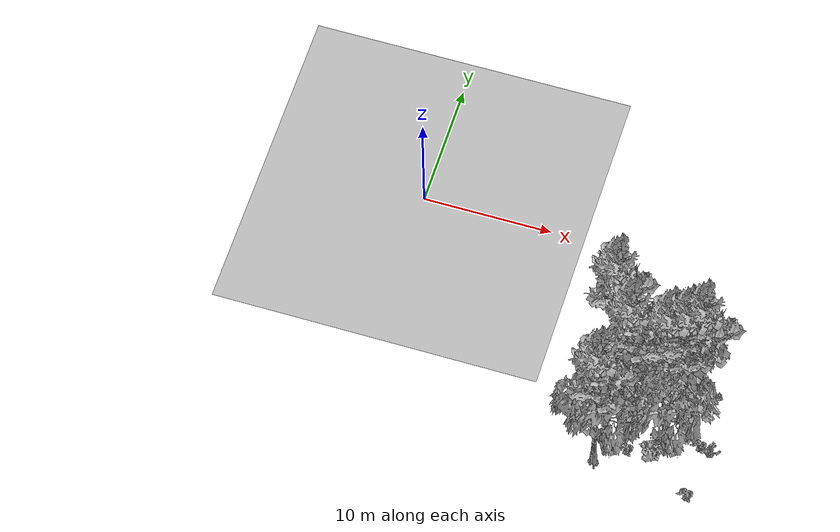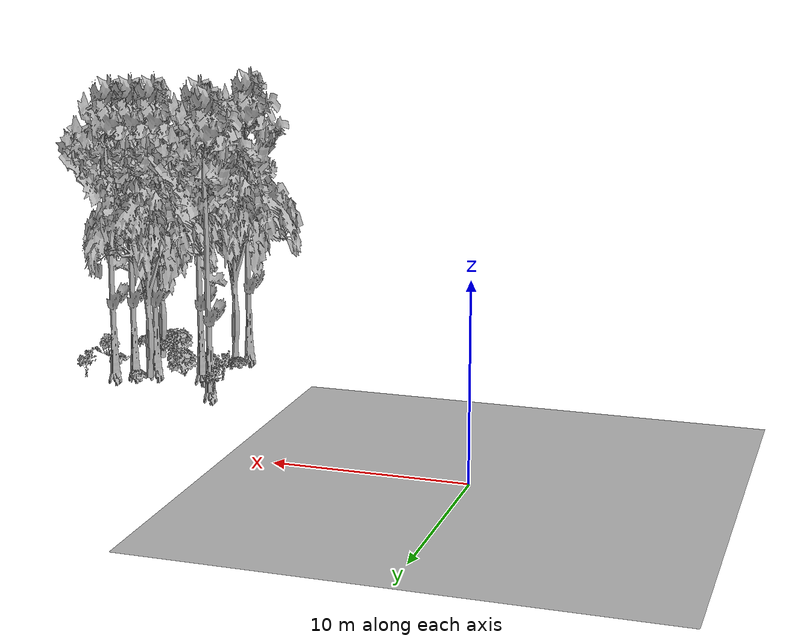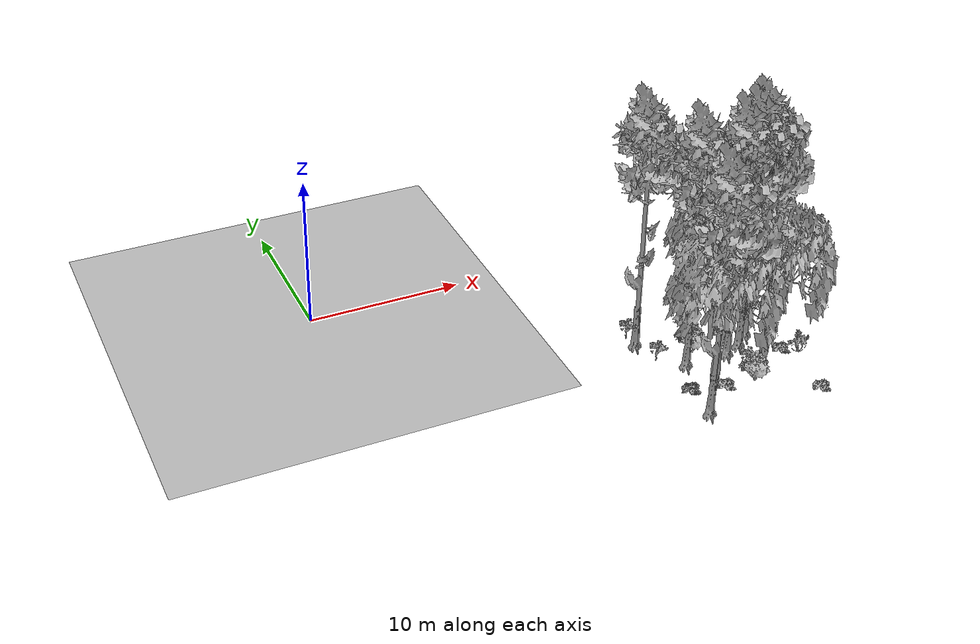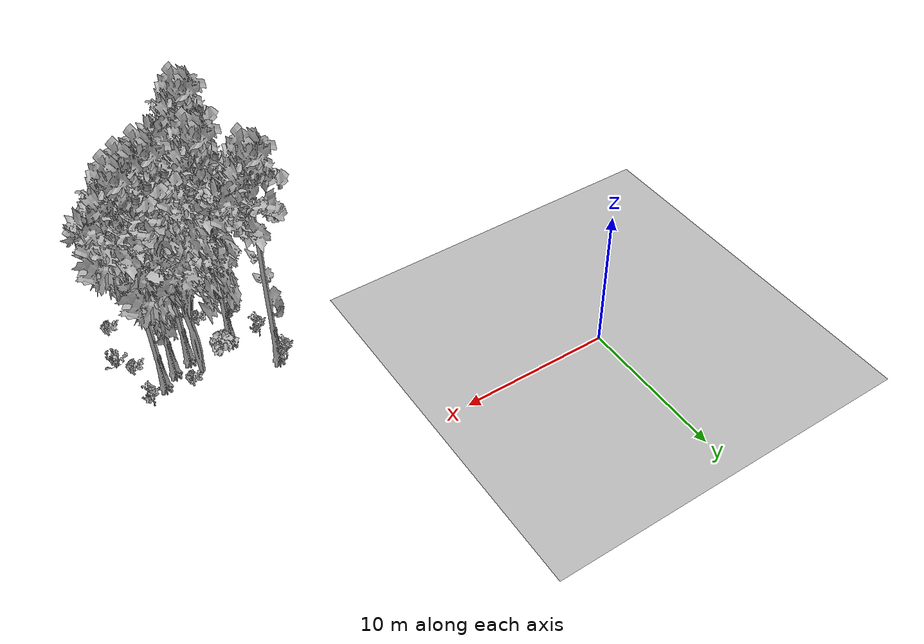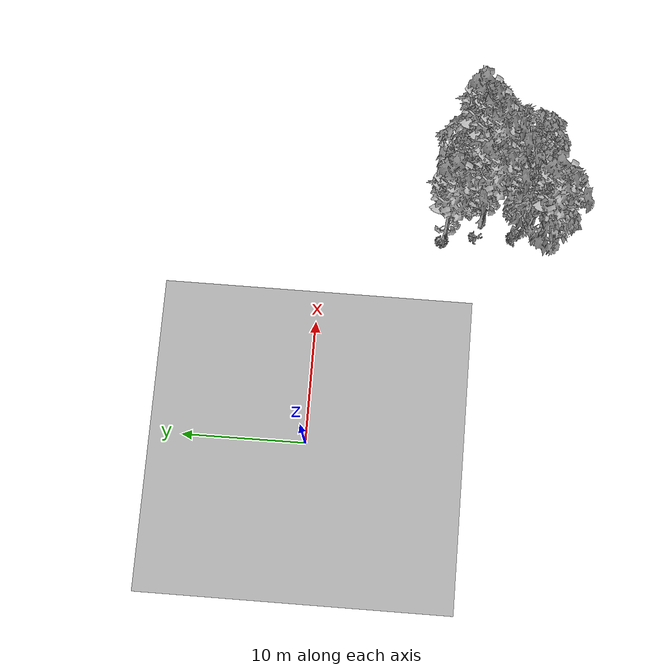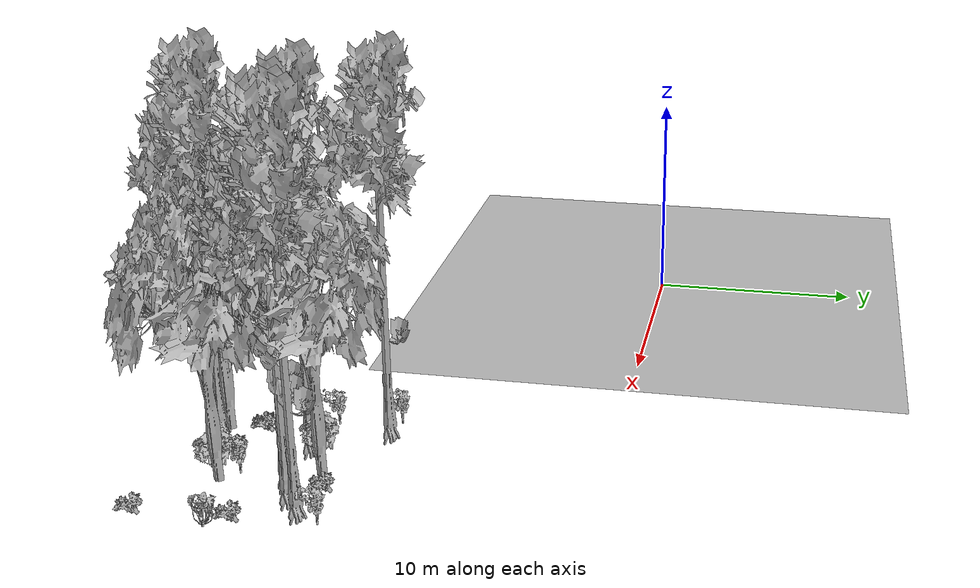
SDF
<sdf version="1.7">
 <world name="default">
  <model name="ground_plane">
   <static>1</static>
   <link name="link">
    <collision name="collision">
     <pose>-50 0 0 0 -0 0</pose>
     <geometry><plane><normal>0 0 1</normal><size>80 80</size></plane></geometry>
     <surface><contact><ode><min_depth>0.01</min_depth><max_vel>0</max_vel></ode></contact></surface>
    </collision>
    <visual name="grass">
     <cast_shadows>0</cast_shadows>
     <geometry>
      <mesh>
       <scale>0.46714285714285714 0.46714285714285714 0.1</scale>
       <uri>file://grass_plane/meshes/grass_plane.dae</uri>
      </mesh>
     </geometry>
    </visual>
   </link>
  </model>
  <model name="Tree 71">
   <static>1</static>
   <pose>18.949762969693253 -16.834025382511328 0 1.57079 -0 0</pose>
   <link name="link">
    <collision name="collision">
     <geometry><mesh><scale>3.5 5 3.5</scale><uri>model://tree_2/meshes/tree_2.obj</uri></mesh></geometry>
    </collision>
    <visual name="visual">
     <geometry><mesh><scale>3.5 5 3.5</scale><uri>model://tree_2/meshes/tree_2.obj</uri></mesh></geometry>
    </visual>
   </link>
  </model>
  <model name="Tree 79">
   <static>1</static>
   <pose>17.715746508241843 -9.977842980561498 0 1.57079 -0 0</pose>
   <link name="link">
    <collision name="collision">
     <geometry><mesh><scale>3.5 5 3.5</scale><uri>model://tree_9/meshes/tree_9.obj</uri></mesh></geometry>
    </collision>
    <visual name="visual">
     <geometry><mesh><scale>3.5 5 3.5</scale><uri>model://tree_9/meshes/tree_9.obj</uri></mesh></geometry>
    </visual>
   </link>
  </model>
  <model name="Tree 117">
   <static>1</static>
   <pose>22.063335480045566 -11.541939054952877 0 1.57079 -0 0</pose>
   <link name="link">
    <collision name="collision">
     <geometry><mesh><scale>3.5 5 3.5</scale><uri>model://tree_2/meshes/tree_2.obj</uri></mesh></geometry>
    </collision>
    <visual name="visual">
     <geometry><mesh><scale>3.5 5 3.5</scale><uri>model://tree_2/meshes/tree_2.obj</uri></mesh></geometry>
    </visual>
   </link>
  </model>
  <model name="Tree 147">
   <static>1</static>
   <pose>18.445780081775347 -17.553376752112264 0 1.57079 -0 0</pose>
   <link name="link">
    <collision name="collision">
     <geometry><mesh><scale>3.5 5 3.5</scale><uri>model://tree_9/meshes/tree_9.obj</uri></mesh></geometry>
    </collision>
    <visual name="visual">
     <geometry><mesh><scale>3.5 5 3.5</scale><uri>model://tree_9/meshes/tree_9.obj</uri></mesh></geometry>
    </visual>
   </link>
  </model>
  <model name="Tree 187">
   <static>1</static>
   <pose>24.5061850201026 -11.779840239119661 0 1.57079 -0 0</pose>
   <link name="link">
    <collision name="collision">
     <geometry><mesh><scale>3.5 5 3.5</scale><uri>model://tree_9/meshes/tree_9.obj</uri></mesh></geometry>
    </collision>
    <visual name="visual">
     <geometry><mesh><scale>3.5 5 3.5</scale><uri>model://tree_9/meshes/tree_9.obj</uri></mesh></geometry>
    </visual>
   </link>
  </model>
  <model name="Tree 347">
   <static>1</static>
   <pose>23.586142157271503 -12.507700522863423 0 1.57079 -0 0</pose>
   <link name="link">
    <collision name="collision">
     <geometry><mesh><scale>3.5 5 3.5</scale><uri>model://tree_9/meshes/tree_9.obj</uri></mesh></geometry>
    </collision>
    <visual name="visual">
     <geometry><mesh><scale>3.5 5 3.5</scale><uri>model://tree_9/meshes/tree_9.obj</uri></mesh></geometry>
    </visual>
   </link>
  </model>
  <model name="Tree 382">
   <static>1</static>
   <pose>23.146761285014925 -15.598197310502464 0 1.57079 -0 0</pose>
   <link name="link">
    <collision name="collision">
     <geometry><mesh><scale>3.5 5 3.5</scale><uri>model://tree_2/meshes/tree_2.obj</uri></mesh></geometry>
    </collision>
    <visual name="visual">
     <geometry><mesh><scale>3.5 5 3.5</scale><uri>model://tree_2/meshes/tree_2.obj</uri></mesh></geometry>
    </visual>
   </link>
  </model>
  <model name="Tree 493">
   <static>1</static>
   <pose>22.421640201376597 -13.029986978318504 0 1.57079 -0 0</pose>
   <link name="link">
    <collision name="collision">
     <geometry><mesh><scale>3.5 5 3.5</scale><uri>model://tree_9/meshes/tree_9.obj</uri></mesh></geometry>
    </collision>
    <visual name="visual">
     <geometry><mesh><scale>3.5 5 3.5</scale><uri>model://tree_9/meshes/tree_9.obj</uri></mesh></geometry>
    </visual>
   </link>
  </model>
  <model name="Tree 495">
   <static>1</static>
   <pose>19.56589008689788 -12.99021113770391 0 1.57079 -0 0</pose>
   <link name="link">
    <collision name="collision">
     <geometry><mesh><scale>3.5 5 3.5</scale><uri>model://tree_9/meshes/tree_9.obj</uri></mesh></geometry>
    </collision>
    <visual name="visual">
     <geometry><mesh><scale>3.5 5 3.5</scale><uri>model://tree_9/meshes/tree_9.obj</uri></mesh></geometry>
    </visual>
   </link>
  </model>
  <model name="Bush 32">
   <static>1</static>
   <pose>17.91537983345959 -12.216425152669377 0 1.57079 -0 0</pose>
   <link name="link">
    <collision name="collision">
     <geometry><mesh><scale>2 2 2</scale><uri>model://bush_5/meshes/bush_5.obj</uri></mesh></geometry>
     <surface><contact><collide_without_contact>false</collide_without_contact></contact></surface>
    </collision>
    <visual name="visual">
     <geometry><mesh><scale>2 2 2</scale><uri>model://bush_5/meshes/bush_5.obj</uri></mesh></geometry>
    </visual>
   </link>
  </model>
  <model name="Bush 42">
   <static>1</static>
   <pose>25.693660655084003 -10.46090224511321 0 1.57079 -0 0</pose>
   <link name="link">
    <collision name="collision">
     <geometry><mesh><scale>2 2 2</scale><uri>model://bush_5/meshes/bush_5.obj</uri></mesh></geometry>
     <surface><contact><collide_without_contact>false</collide_without_contact></contact></surface>
    </collision>
    <visual name="visual">
     <geometry><mesh><scale>2 2 2</scale><uri>model://bush_5/meshes/bush_5.obj</uri></mesh></geometry>
    </visual>
   </link>
  </model>
  <model name="Bush 54">
   <static>1</static>
   <pose>22.359560409586237 -16.25682078267473 0 1.57079 -0 0</pose>
   <link name="link">
    <collision name="collision">
     <geometry><mesh><scale>2 2 2</scale><uri>model://bush_1/meshes/bush_1.obj</uri></mesh></geometry>
     <surface><contact><collide_without_contact>false</collide_without_contact></contact></surface>
    </collision>
    <visual name="visual">
     <geometry><mesh><scale>2 2 2</scale><uri>model://bush_1/meshes/bush_1.obj</uri></mesh></geometry>
    </visual>
   </link>
  </model>
  <model name="Bush 114">
   <static>1</static>
   <pose>18.28871242556091 -15.598098628790229 0 1.57079 -0 0</pose>
   <link name="link">
    <collision name="collision">
     <geometry><mesh><scale>2 2 2</scale><uri>model://bush_2/meshes/bush_2.obj</uri></mesh></geometry>
     <surface><contact><collide_without_contact>false</collide_without_contact></contact></surface>
    </collision>
    <visual name="visual">
     <geometry><mesh><scale>2 2 2</scale><uri>model://bush_2/meshes/bush_2.obj</uri></mesh></geometry>
    </visual>
   </link>
  </model>
  <model name="Bush 121">
   <static>1</static>
   <pose>25.610836194773654 -18.376732295427054 0 1.57079 -0 0</pose>
   <link name="link">
    <collision name="collision">
     <geometry><mesh><scale>2 2 2</scale><uri>model://bush_2/meshes/bush_2.obj</uri></mesh></geometry>
     <surface><contact><collide_without_contact>false</collide_without_contact></contact></surface>
    </collision>
    <visual name="visual">
     <geometry><mesh><scale>2 2 2</scale><uri>model://bush_2/meshes/bush_2.obj</uri></mesh></geometry>
    </visual>
   </link>
  </model>
  <model name="Bush 165">
   <static>1</static>
   <pose>22.58748684247911 -14.909514250056386 0 1.57079 -0 0</pose>
   <link name="link">
    <collision name="collision">
     <geometry><mesh><scale>2 2 2</scale><uri>model://bush_5/meshes/bush_5.obj</uri></mesh></geometry>
     <surface><contact><collide_without_contact>false</collide_without_contact></contact></surface>
    </collision>
    <visual name="visual">
     <geometry><mesh><scale>2 2 2</scale><uri>model://bush_5/meshes/bush_5.obj</uri></mesh></geometry>
    </visual>
   </link>
  </model>
  <model name="Bush 236">
   <static>1</static>
   <pose>22.744649371457534 -11.355486505163679 0 1.57079 -0 0</pose>
   <link name="link">
    <collision name="collision">
     <geometry><mesh><scale>2 2 2</scale><uri>model://bush_2/meshes/bush_2.obj</uri></mesh></geometry>
     <surface><contact><collide_without_contact>false</collide_without_contact></contact></surface>
    </collision>
    <visual name="visual">
     <geometry><mesh><scale>2 2 2</scale><uri>model://bush_2/meshes/bush_2.obj</uri></mesh></geometry>
    </visual>
   </link>
  </model>
  <model name="Bush 255">
   <static>1</static>
   <pose>25.483466844920926 -14.255241512543797 0 1.57079 -0 0</pose>
   <link name="link">
    <collision name="collision">
     <geometry><mesh><scale>2 2 2</scale><uri>model://bush_2/meshes/bush_2.obj</uri></mesh></geometry>
     <surface><contact><collide_without_contact>false</collide_without_contact></contact></surface>
    </collision>
    <visual name="visual">
     <geometry><mesh><scale>2 2 2</scale><uri>model://bush_2/meshes/bush_2.obj</uri></mesh></geometry>
    </visual>
   </link>
  </model>
  <model name="Bush 260">
   <static>1</static>
   <pose>20.455756752328924 -16.052990792548893 0 1.57079 -0 0</pose>
   <link name="link">
    <collision name="collision">
     <geometry><mesh><scale>2 2 2</scale><uri>model://bush_2/meshes/bush_2.obj</uri></mesh></geometry>
     <surface><contact><collide_without_contact>false</collide_without_contact></contact></surface>
    </collision>
    <visual name="visual">
     <geometry><mesh><scale>2 2 2</scale><uri>model://bush_2/meshes/bush_2.obj</uri></mesh></geometry>
    </visual>
   </link>
  </model>
  <model name="Bush 308">
   <static>1</static>
   <pose>18.383298936329076 -15.558070541158582 0 1.57079 -0 0</pose>
   <link name="link">
    <collision name="collision">
     <geometry><mesh><scale>2 2 2</scale><uri>model://bush_2/meshes/bush_2.obj</uri></mesh></geometry>
     <surface><contact><collide_without_contact>false</collide_without_contact></contact></surface>
    </collision>
    <visual name="visual">
     <geometry><mesh><scale>2 2 2</scale><uri>model://bush_2/meshes/bush_2.obj</uri></mesh></geometry>
    </visual>
   </link>
  </model>
  <model name="Bush 449">
   <static>1</static>
   <pose>26.417906182047204 -14.827778826526323 0 1.57079 -0 0</pose>
   <link name="link">
    <collision name="collision">
     <geometry><mesh><scale>2 2 2</scale><uri>model://bush_4/meshes/bush_4.obj</uri></mesh></geometry>
     <surface><contact><collide_without_contact>false</collide_without_contact></contact></surface>
    </collision>
    <visual name="visual">
     <geometry><mesh><scale>2 2 2</scale><uri>model://bush_4/meshes/bush_4.obj</uri></mesh></geometry>
    </visual>
   </link>
  </model>
  <model name="Bush 496">
   <static>1</static>
   <pose>20.345035088976687 -12.34574491272295 0 1.57079 -0 0</pose>
   <link name="link">
    <collision name="collision">
     <geometry><mesh><scale>2 2 2</scale><uri>model://bush_1/meshes/bush_1.obj</uri></mesh></geometry>
     <surface><contact><collide_without_contact>false</collide_without_contact></contact></surface>
    </collision>
    <visual name="visual">
     <geometry><mesh><scale>2 2 2</scale><uri>model://bush_1/meshes/bush_1.obj</uri></mesh></geometry>
    </visual>
   </link>
  </model>
  <model name="Bush 527">
   <static>1</static>
   <pose>17.345181084986578 -9.505024962390305 0 1.57079 -0 0</pose>
   <link name="link">
    <collision name="collision">
     <geometry><mesh><scale>2 2 2</scale><uri>model://bush_5/meshes/bush_5.obj</uri></mesh></geometry>
     <surface><contact><collide_without_contact>false</collide_without_contact></contact></surface>
    </collision>
    <visual name="visual">
     <geometry><mesh><scale>2 2 2</scale><uri>model://bush_5/meshes/bush_5.obj</uri></mesh></geometry>
    </visual>
   </link>
  </model>
 </world>
</sdf>
